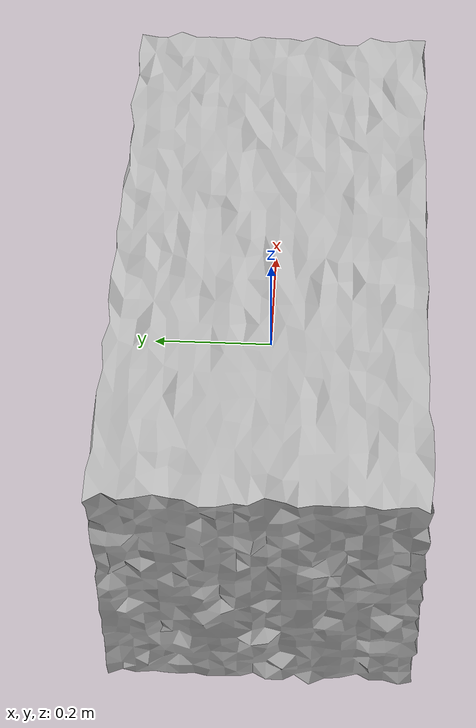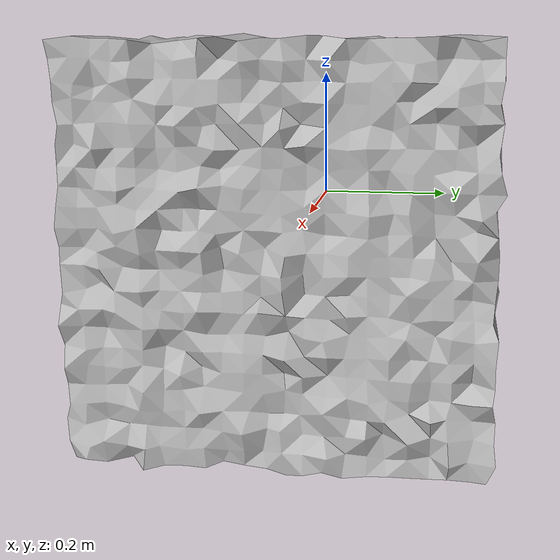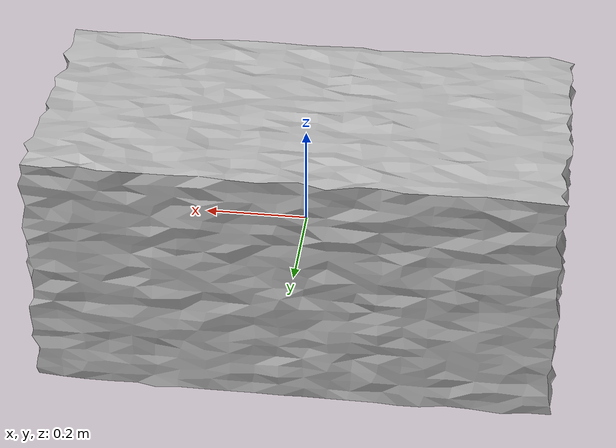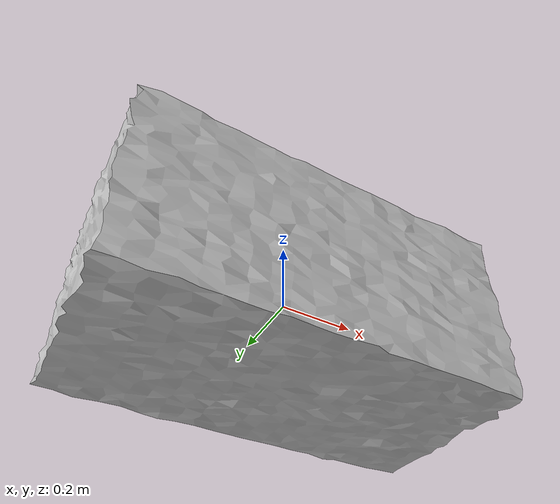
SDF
<?xml version="1.0"?>
<sdf version="1.6">
  <model name="Straw Bale">
    <static>true</static>
    <link name="bale_link">
      <visual name="body_visual">
      	<geometry>
          <mesh>
            <uri>meshes/strawbale_noise.dae</uri>
            <scale>1 1 1</scale>
          </mesh>
        </geometry>
      </visual>
      <collision name="body_collision">
      	<geometry>
          <mesh>
            <uri>meshes/strawbale_noise.dae</uri>
            <scale>1 1 1</scale>
          </mesh>
        </geometry>
      </collision>
    </link>
  </model>
</sdf>
